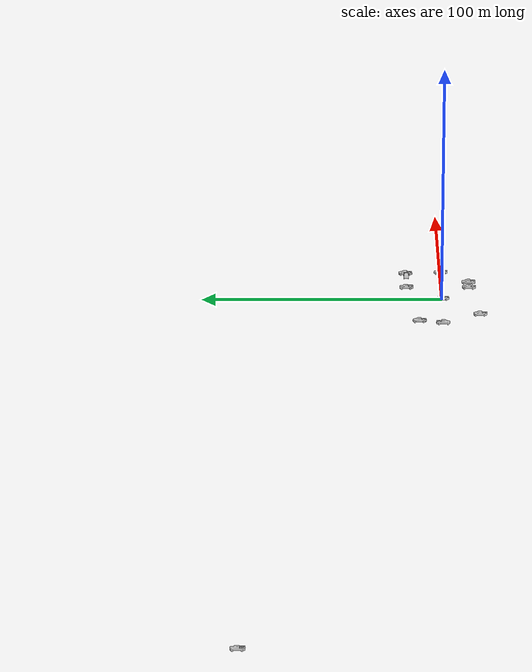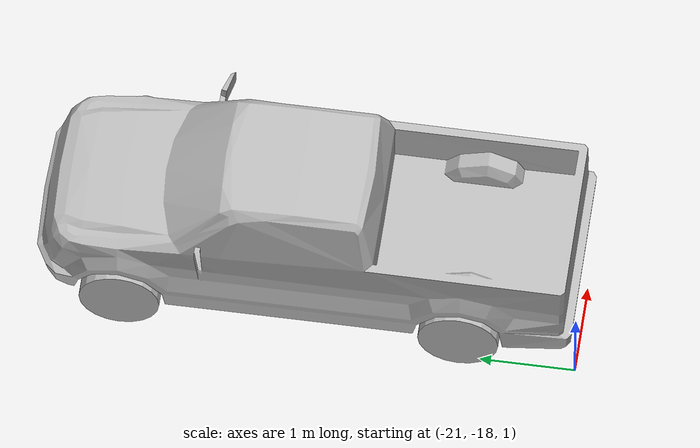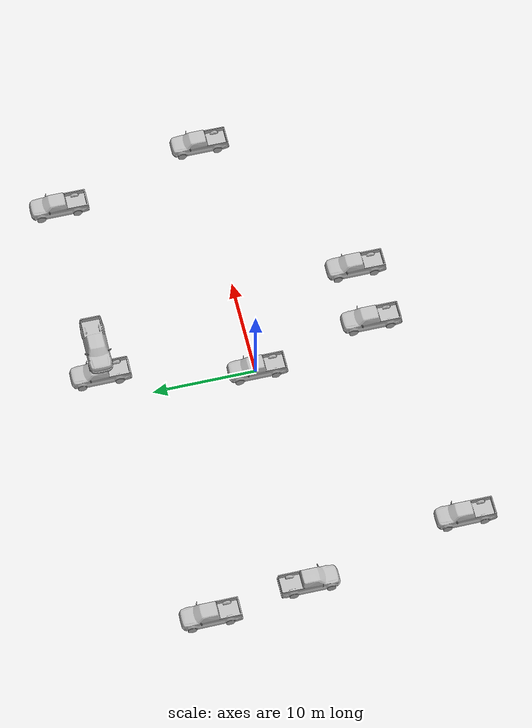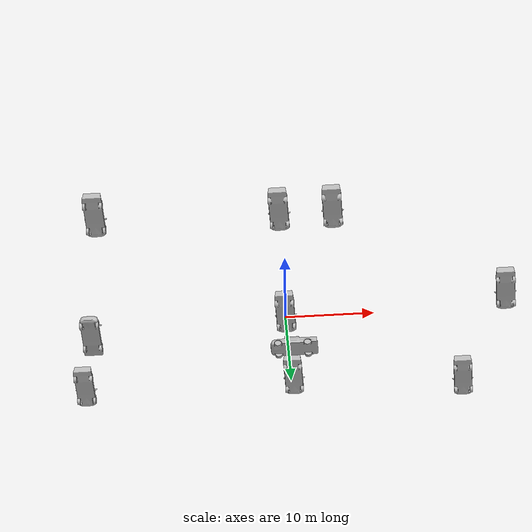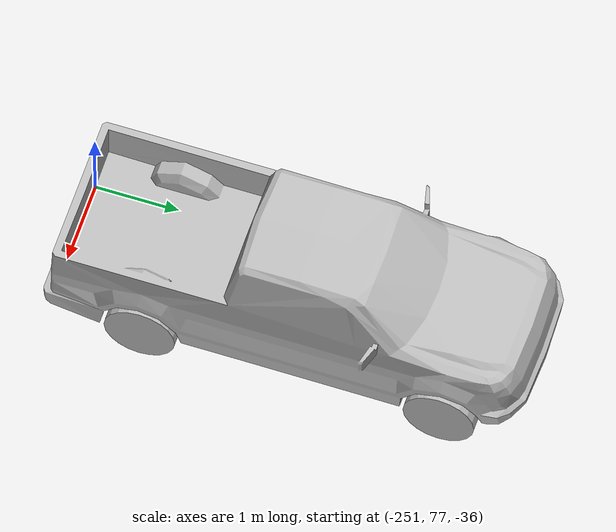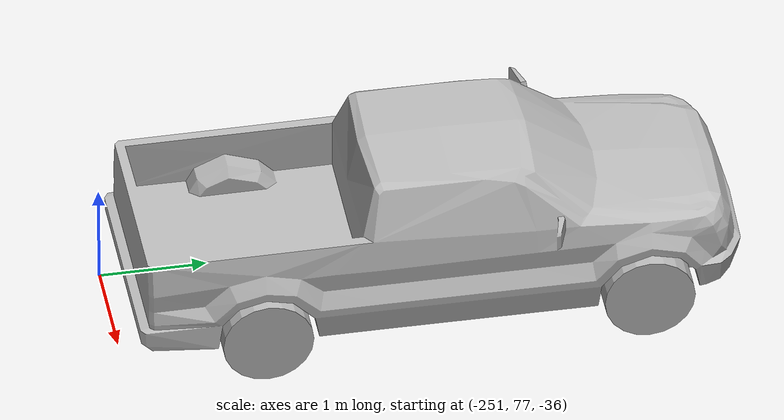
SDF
<?xml version='1.0'?>
<sdf version="1.10">
  <model name="ihunter">

    <include>
      <uri>model://sand_model/model.sdf</uri>
      <name>sand_model</name>
      <pose>0 0 0 0 0 0</pose>
    </include>

    <frame name="sand_frame" attached_to="sand_model::sand_link">
      <pose relative_to="__model__">0 0 0 0 0 0</pose>
    </frame>

    <include>
      <uri>model://radio_tower/model.sdf</uri>
      <name>tower_right</name>
      <pose relative_to="sand_frame">25 0 2 0 0 0</pose>
    </include>

    <include>
      <uri>model://radio_tower/model.sdf</uri>
      <name>tower_left</name>
      <pose relative_to="sand_frame">-22 0 -2 0 0 3.1416</pose>
    </include>

    <include>
      <uri>model://ground_station/model.sdf</uri>
      <name>gound_station_1</name>
      <pose relative_to="sand_frame">-20 -15 1 0 0 0</pose>
    </include>

    <include>
      <uri>model://ground_station/model.sdf</uri>
      <name>gound_station_2</name>
      <pose relative_to="sand_frame">20 15 3.5 0 0 0</pose>
    </include>

    <include>
      <uri>model://radar_station/model.sdf</uri>
      <name>radar_station</name>
      <pose relative_to="sand_frame">0 15 10 0 0 1.5705</pose>
    </include>

    <include>
      <uri>model://police_station/model.sdf</uri>
      <name>police_station_1</name>
      <pose relative_to="sand_frame">6 -11 5 0 0 0</pose>
    </include>
    <include>
      <uri>model://police_station/model.sdf</uri>
      <name>police_station_2</name>
      <pose relative_to="sand_frame">0 -11 5 0 0 0</pose>
    </include>

    <include>
      <uri>model://Pickup/model.sdf</uri>
      <name>Pickup</name>
      <pose relative_to="sand_frame">-24 10 -0.3 0 0 0</pose>
    </include>

    <include>
      <uri>model://red_box/model.sdf</uri>
      <name>red_box</name>
      <pose relative_to="sand_frame">-250 80 -35.7 0 0 0</pose>
    </include>
    <include>
      <uri>model://radar_pole/model.sdf</uri>
      <name>radar_pole</name>
      <pose relative_to="sand_frame">0 15 5 0 0 0</pose>
    </include>
  </model>
</sdf>

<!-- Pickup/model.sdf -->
<sdf version="1.6">
  <model name="pickup">
    <static>true</static>
    <link name="link">
      <collision name="collision">
        <pose>0 0 0 0 0 0</pose>
        <geometry>
          <mesh>
            <uri>meshes/pickup.dae</uri>
          </mesh>
        </geometry>
      </collision>
      <visual name="visual">
        <pose>0 0 0 0 0 0</pose>
        <geometry>
          <mesh>
            <uri>meshes/pickup.dae</uri>
          </mesh>
        </geometry>
      </visual>
    </link>
  </model>
</sdf>
